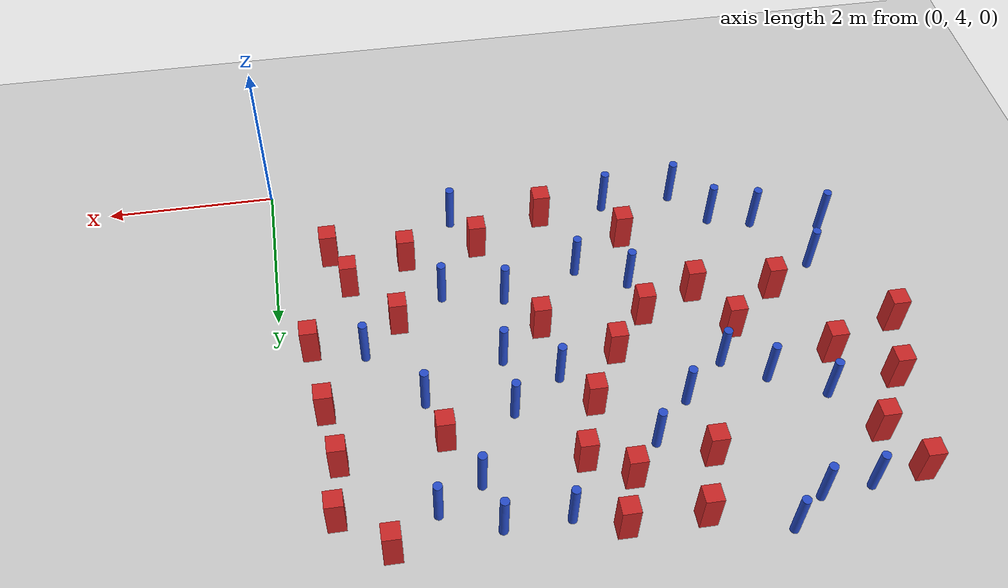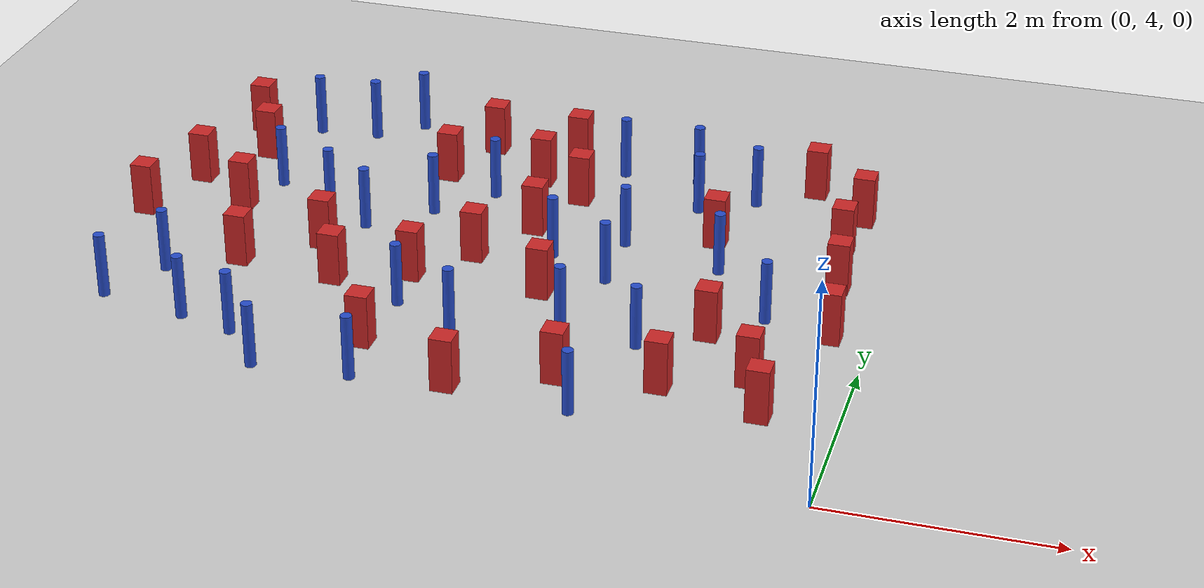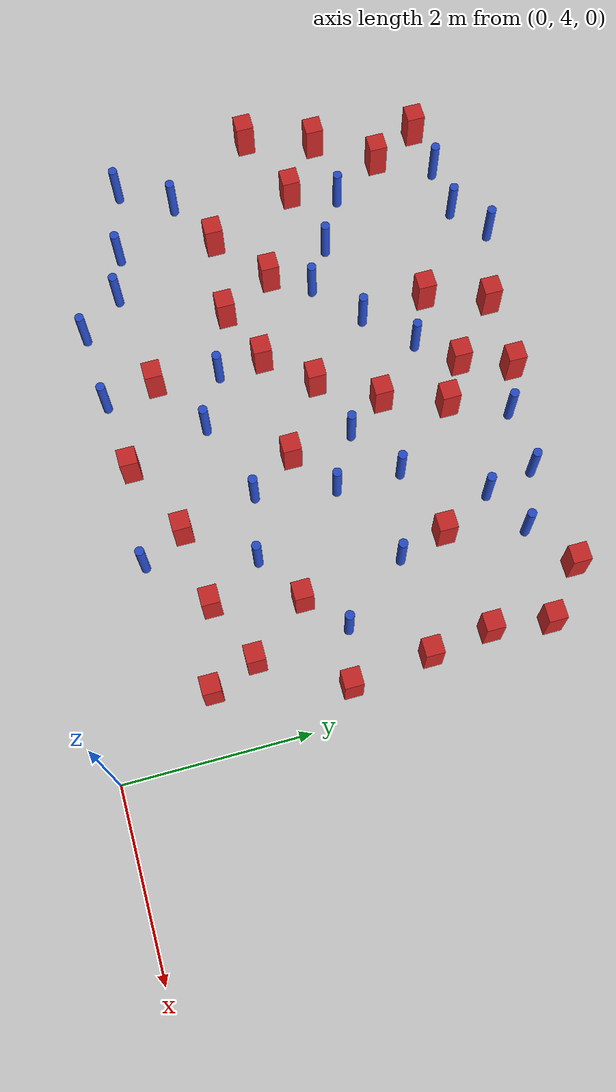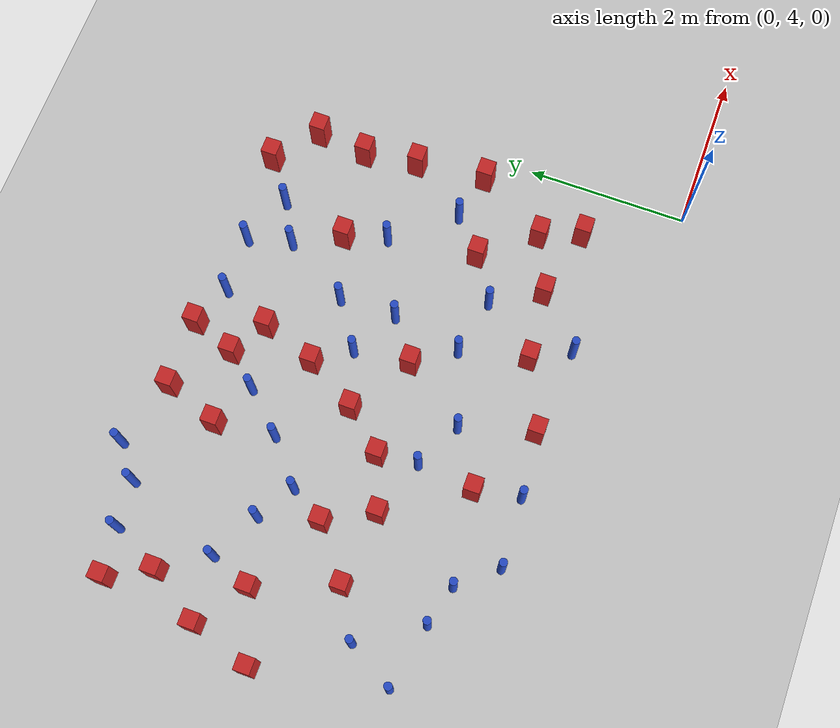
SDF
<sdf version="1.6">
 <world name="default">
  <model name="ground_plane">
   <static>1</static>
   <link name="link">
    <collision name="collision">
     <geometry><plane><normal>0 0 1</normal><size>100 100</size></plane></geometry>
     <surface><friction><ode><mu>100</mu><mu2>50</mu2></ode></friction></surface>
    </collision>
    <visual name="visual">
     <cast_shadows>0</cast_shadows>
     <geometry><plane><normal>0 0 1</normal><size>100 100</size></plane></geometry>
     <material>
      <ambient>1.0 1.0 1.0 1.0</ambient>
      <diffuse>0.8 0.8 0.8 1.0</diffuse>
      <specular>0.01 0.01 0.01 1.000000</specular>
     </material>
    </visual>
   </link>
  </model>
  <model name="square_post_obstacle2">
   <static>true</static>
   <pose>-1.68983508098 7.91056205244 1.91545236811e-07 -7.35059704564e-06 1.12565212e-07 2.39332434364e-05</pose>
   <link name="link">
    <pose>0 0 0.25 0 -0 0</pose>
    <inertial>
     <mass>100</mass>
     <inertia>
      <ixx>0.166667</ixx>
      <ixy>0</ixy>
      <ixz>0</ixz>
      <iyy>0.166667</iyy>
      <iyz>0</iyz>
      <izz>0.166667</izz>
     </inertia>
    </inertial>
    <collision name="collision"><geometry><box><size>.2 .2 .5</size></box></geometry></collision>
    <visual name="visual">
     <geometry><box><size>.2 .2 .5</size></box></geometry>
     <material>
      <script><name>Gazebo/Red</name><uri>file://media/materials/scripts/gazebo.material</uri></script>
     </material>
    </visual>
   </link>
  </model>
  <model name="square_post_obstacle4">
   <static>true</static>
   <pose>-6.96627765335 7.05669013784 1.91545236811e-07 -7.35059704564e-06 1.12565212e-07 2.39332434364e-05</pose>
   <link name="link">
    <pose>0 0 0.25 0 -0 0</pose>
    <inertial>
     <mass>100</mass>
     <inertia>
      <ixx>0.166667</ixx>
      <ixy>0</ixy>
      <ixz>0</ixz>
      <iyy>0.166667</iyy>
      <iyz>0</iyz>
      <izz>0.166667</izz>
     </inertia>
    </inertial>
    <collision name="collision"><geometry><box><size>.2 .2 .5</size></box></geometry></collision>
    <visual name="visual">
     <geometry><box><size>.2 .2 .5</size></box></geometry>
     <material>
      <script><name>Gazebo/Red</name><uri>file://media/materials/scripts/gazebo.material</uri></script>
     </material>
    </visual>
   </link>
  </model>
  <model name="square_post_obstacle5">
   <static>true</static>
   <pose>-3.10918925905 8.37854400875 1.91545236811e-07 -7.35059704564e-06 1.12565212e-07 2.39332434364e-05</pose>
   <link name="link">
    <pose>0 0 0.25 0 -0 0</pose>
    <inertial>
     <mass>100</mass>
     <inertia>
      <ixx>0.166667</ixx>
      <ixy>0</ixy>
      <ixz>0</ixz>
      <iyy>0.166667</iyy>
      <iyz>0</iyz>
      <izz>0.166667</izz>
     </inertia>
    </inertial>
    <collision name="collision"><geometry><box><size>.2 .2 .5</size></box></geometry></collision>
    <visual name="visual">
     <geometry><box><size>.2 .2 .5</size></box></geometry>
     <material>
      <script><name>Gazebo/Red</name><uri>file://media/materials/scripts/gazebo.material</uri></script>
     </material>
    </visual>
   </link>
  </model>
  <model name="pole_obstacle4">
   <static>true</static>
   <pose>-1.50320180323 8.76808181083 7.38925637345e-09 -8.47170692798e-08 1.24976764881e-08 -1.74513093027e-07</pose>
   <link name="link">
    <pose>0 0 0.3 0 -0 0</pose>
    <inertial>
     <mass>1</mass>
     <inertia><ixx>0.145833</ixx><ixy>0</ixy><ixz>0</ixz><iyy>0.145833</iyy><iyz>0</iyz><izz>0.125</izz></inertia>
    </inertial>
    <collision name="collision">
     <geometry><cylinder><radius>0.05</radius><length>.6</length></cylinder></geometry>
    </collision>
    <visual name="visual">
     <geometry><cylinder><radius>0.05</radius><length>.6</length></cylinder></geometry>
     <material>
      <script><name>Gazebo/Blue</name><uri>file://media/materials/scripts/gazebo.material</uri></script>
     </material>
    </visual>
   </link>
  </model>
  <model name="square_post_obstacle11">
   <static>true</static>
   <pose>-3.56252976413 8.64841808031 1.91545236811e-07 -7.35059704564e-06 1.12565212e-07 2.39332434364e-05</pose>
   <link name="link">
    <pose>0 0 0.25 0 -0 0</pose>
    <inertial>
     <mass>100</mass>
     <inertia>
      <ixx>0.166667</ixx>
      <ixy>0</ixy>
      <ixz>0</ixz>
      <iyy>0.166667</iyy>
      <iyz>0</iyz>
      <izz>0.166667</izz>
     </inertia>
    </inertial>
    <collision name="collision"><geometry><box><size>.2 .2 .5</size></box></geometry></collision>
    <visual name="visual">
     <geometry><box><size>.2 .2 .5</size></box></geometry>
     <material>
      <script><name>Gazebo/Red</name><uri>file://media/materials/scripts/gazebo.material</uri></script>
     </material>
    </visual>
   </link>
  </model>
  <model name="square_post_obstacle12">
   <static>true</static>
   <pose>-3.26608829545 4.85899182466 1.91545236811e-07 -7.35059704564e-06 1.12565212e-07 2.39332434364e-05</pose>
   <link name="link">
    <pose>0 0 0.25 0 -0 0</pose>
    <inertial>
     <mass>100</mass>
     <inertia>
      <ixx>0.166667</ixx>
      <ixy>0</ixy>
      <ixz>0</ixz>
      <iyy>0.166667</iyy>
      <iyz>0</iyz>
      <izz>0.166667</izz>
     </inertia>
    </inertial>
    <collision name="collision"><geometry><box><size>.2 .2 .5</size></box></geometry></collision>
    <visual name="visual">
     <geometry><box><size>.2 .2 .5</size></box></geometry>
     <material>
      <script><name>Gazebo/Red</name><uri>file://media/materials/scripts/gazebo.material</uri></script>
     </material>
    </visual>
   </link>
  </model>
  <model name="square_post_obstacle13">
   <static>true</static>
   <pose>-6.30400001628 8.47020350388 1.91545236811e-07 -7.35059704564e-06 1.12565212e-07 2.39332434364e-05</pose>
   <link name="link">
    <pose>0 0 0.25 0 -0 0</pose>
    <inertial>
     <mass>100</mass>
     <inertia>
      <ixx>0.166667</ixx>
      <ixy>0</ixy>
      <ixz>0</ixz>
      <iyy>0.166667</iyy>
      <iyz>0</iyz>
      <izz>0.166667</izz>
     </inertia>
    </inertial>
    <collision name="collision"><geometry><box><size>.2 .2 .5</size></box></geometry></collision>
    <visual name="visual">
     <geometry><box><size>.2 .2 .5</size></box></geometry>
     <material>
      <script><name>Gazebo/Red</name><uri>file://media/materials/scripts/gazebo.material</uri></script>
     </material>
    </visual>
   </link>
  </model>
  <model name="square_post_obstacle14">
   <static>true</static>
   <pose>-0.540769029304 8.05975475721 1.91545236811e-07 -7.35059704564e-06 1.12565212e-07 2.39332434364e-05</pose>
   <link name="link">
    <pose>0 0 0.25 0 -0 0</pose>
    <inertial>
     <mass>100</mass>
     <inertia>
      <ixx>0.166667</ixx>
      <ixy>0</ixy>
      <ixz>0</ixz>
      <iyy>0.166667</iyy>
      <iyz>0</iyz>
      <izz>0.166667</izz>
     </inertia>
    </inertial>
    <collision name="collision"><geometry><box><size>.2 .2 .5</size></box></geometry></collision>
    <visual name="visual">
     <geometry><box><size>.2 .2 .5</size></box></geometry>
     <material>
      <script><name>Gazebo/Red</name><uri>file://media/materials/scripts/gazebo.material</uri></script>
     </material>
    </visual>
   </link>
  </model>
  <model name="pole_obstacle10">
   <static>true</static>
   <pose>-6.65671681823 5.46702779641 7.38925637345e-09 -8.47170692796e-08 1.24976764786e-08 -1.74513093032e-07</pose>
   <link name="link">
    <pose>0 0 0.3 0 -0 0</pose>
    <inertial>
     <mass>1</mass>
     <inertia><ixx>0.145833</ixx><ixy>0</ixy><ixz>0</ixz><iyy>0.145833</iyy><iyz>0</iyz><izz>0.125</izz></inertia>
    </inertial>
    <collision name="collision">
     <geometry><cylinder><radius>0.05</radius><length>.6</length></cylinder></geometry>
    </collision>
    <visual name="visual">
     <geometry><cylinder><radius>0.05</radius><length>.6</length></cylinder></geometry>
     <material>
      <script><name>Gazebo/Blue</name><uri>file://media/materials/scripts/gazebo.material</uri></script>
     </material>
    </visual>
   </link>
  </model>
  <model name="square_post_obstacle21">
   <static>true</static>
   <pose>-4.16433848893 6.54994403118 1.91545236811e-07 -7.35059704564e-06 1.12565212e-07 2.39332434364e-05</pose>
   <link name="link">
    <pose>0 0 0.25 0 -0 0</pose>
    <inertial>
     <mass>100</mass>
     <inertia>
      <ixx>0.166667</ixx>
      <ixy>0</ixy>
      <ixz>0</ixz>
      <iyy>0.166667</iyy>
      <iyz>0</iyz>
      <izz>0.166667</izz>
     </inertia>
    </inertial>
    <collision name="collision"><geometry><box><size>.2 .2 .5</size></box></geometry></collision>
    <visual name="visual">
     <geometry><box><size>.2 .2 .5</size></box></geometry>
     <material>
      <script><name>Gazebo/Red</name><uri>file://media/materials/scripts/gazebo.material</uri></script>
     </material>
    </visual>
   </link>
  </model>
  <model name="pole_obstacle14">
   <static>true</static>
   <pose>-4.94699547819 4.71956309399 7.38925637345e-09 -8.47170692796e-08 1.24976764786e-08 -1.74513093032e-07</pose>
   <link name="link">
    <pose>0 0 0.3 0 -0 0</pose>
    <inertial>
     <mass>1</mass>
     <inertia><ixx>0.145833</ixx><ixy>0</ixy><ixz>0</ixz><iyy>0.145833</iyy><iyz>0</iyz><izz>0.125</izz></inertia>
    </inertial>
    <collision name="collision">
     <geometry><cylinder><radius>0.05</radius><length>.6</length></cylinder></geometry>
    </collision>
    <visual name="visual">
     <geometry><cylinder><radius>0.05</radius><length>.6</length></cylinder></geometry>
     <material>
      <script><name>Gazebo/Blue</name><uri>file://media/materials/scripts/gazebo.material</uri></script>
     </material>
    </visual>
   </link>
  </model>
  <model name="square_post_obstacle27">
   <static>true</static>
   <pose>-0.349142158028 6.51471214501 1.91545236811e-07 -7.35059704564e-06 1.12565212e-07 2.39332434364e-05</pose>
   <link name="link">
    <pose>0 0 0.25 0 -0 0</pose>
    <inertial>
     <mass>100</mass>
     <inertia>
      <ixx>0.166667</ixx>
      <ixy>0</ixy>
      <ixz>0</ixz>
      <iyy>0.166667</iyy>
      <iyz>0</iyz>
      <izz>0.166667</izz>
     </inertia>
    </inertial>
    <collision name="collision"><geometry><box><size>.2 .2 .5</size></box></geometry></collision>
    <visual name="visual">
     <geometry><box><size>.2 .2 .5</size></box></geometry>
     <material>
      <script><name>Gazebo/Red</name><uri>file://media/materials/scripts/gazebo.material</uri></script>
     </material>
    </visual>
   </link>
  </model>
  <model name="pole_obstacle20">
   <static>true</static>
   <pose>-5.94156260128 7.90531764118 7.38925637345e-09 -8.47170692796e-08 1.24976764786e-08 -1.74513093032e-07</pose>
   <link name="link">
    <pose>0 0 0.3 0 -0 0</pose>
    <inertial>
     <mass>1</mass>
     <inertia><ixx>0.145833</ixx><ixy>0</ixy><ixz>0</ixz><iyy>0.145833</iyy><iyz>0</iyz><izz>0.125</izz></inertia>
    </inertial>
    <collision name="collision">
     <geometry><cylinder><radius>0.05</radius><length>.6</length></cylinder></geometry>
    </collision>
    <visual name="visual">
     <geometry><cylinder><radius>0.05</radius><length>.6</length></cylinder></geometry>
     <material>
      <script><name>Gazebo/Blue</name><uri>file://media/materials/scripts/gazebo.material</uri></script>
     </material>
    </visual>
   </link>
  </model>
  <model name="pole_obstacle36">
   <static>true</static>
   <pose>-2.48091820682 7.66046415937 7.38925637345e-09 -8.47170692798e-08 1.24976765033e-08 -1.74513093019e-07</pose>
   <link name="link">
    <pose>0 0 0.3 0 -0 0</pose>
    <inertial>
     <mass>1</mass>
     <inertia><ixx>0.145833</ixx><ixy>0</ixy><ixz>0</ixz><iyy>0.145833</iyy><iyz>0</iyz><izz>0.125</izz></inertia>
    </inertial>
    <collision name="collision">
     <geometry><cylinder><radius>0.05</radius><length>.6</length></cylinder></geometry>
    </collision>
    <visual name="visual">
     <geometry><cylinder><radius>0.05</radius><length>.6</length></cylinder></geometry>
     <material>
      <script><name>Gazebo/Blue</name><uri>file://media/materials/scripts/gazebo.material</uri></script>
     </material>
    </visual>
   </link>
  </model>
  <model name="square_post_obstacle37">
   <static>true</static>
   <pose>-4.81358570334 6.29603112338 1.91545236811e-07 -7.35059704564e-06 1.12565212e-07 2.39332434364e-05</pose>
   <link name="link">
    <pose>0 0 0.25 0 -0 0</pose>
    <inertial>
     <mass>100</mass>
     <inertia>
      <ixx>0.166667</ixx>
      <ixy>0</ixy>
      <ixz>0</ixz>
      <iyy>0.166667</iyy>
      <iyz>0</iyz>
      <izz>0.166667</izz>
     </inertia>
    </inertial>
    <collision name="collision"><geometry><box><size>.2 .2 .5</size></box></geometry></collision>
    <visual name="visual">
     <geometry><box><size>.2 .2 .5</size></box></geometry>
     <material>
      <script><name>Gazebo/Red</name><uri>file://media/materials/scripts/gazebo.material</uri></script>
     </material>
    </visual>
   </link>
  </model>
  <model name="square_post_obstacle50">
   <static>true</static>
   <pose>-1.36747664874 6.27044725274 1.91545236811e-07 -7.35059704564e-06 1.12565212e-07 2.39332434364e-05</pose>
   <link name="link">
    <pose>0 0 0.25 0 -0 0</pose>
    <inertial>
     <mass>100</mass>
     <inertia>
      <ixx>0.166667</ixx>
      <ixy>0</ixy>
      <ixz>0</ixz>
      <iyy>0.166667</iyy>
      <iyz>0</iyz>
      <izz>0.166667</izz>
     </inertia>
    </inertial>
    <collision name="collision"><geometry><box><size>.2 .2 .5</size></box></geometry></collision>
    <visual name="visual">
     <geometry><box><size>.2 .2 .5</size></box></geometry>
     <material>
      <script><name>Gazebo/Red</name><uri>file://media/materials/scripts/gazebo.material</uri></script>
     </material>
    </visual>
   </link>
  </model>
  <model name="square_post_obstacle51">
   <static>true</static>
   <pose>-5.74496872689 6.38929400192 1.91545236811e-07 -7.35059704564e-06 1.12565212e-07 2.39332434364e-05</pose>
   <link name="link">
    <pose>0 0 0.25 0 -0 0</pose>
    <inertial>
     <mass>100</mass>
     <inertia>
      <ixx>0.166667</ixx>
      <ixy>0</ixy>
      <ixz>0</ixz>
      <iyy>0.166667</iyy>
      <iyz>0</iyz>
      <izz>0.166667</izz>
     </inertia>
    </inertial>
    <collision name="collision"><geometry><box><size>.2 .2 .5</size></box></geometry></collision>
    <visual name="visual">
     <geometry><box><size>.2 .2 .5</size></box></geometry>
     <material>
      <script><name>Gazebo/Red</name><uri>file://media/materials/scripts/gazebo.material</uri></script>
     </material>
    </visual>
   </link>
  </model>
  <model name="square_post_obstacle52">
   <static>true</static>
   <pose>-1.55913950059 5.33385394794 1.91545236811e-07 -7.35059704564e-06 1.12565212e-07 2.39332434364e-05</pose>
   <link name="link">
    <pose>0 0 0.25 0 -0 0</pose>
    <inertial>
     <mass>100</mass>
     <inertia>
      <ixx>0.166667</ixx>
      <ixy>0</ixy>
      <ixz>0</ixz>
      <iyy>0.166667</iyy>
      <iyz>0</iyz>
      <izz>0.166667</izz>
     </inertia>
    </inertial>
    <collision name="collision"><geometry><box><size>.2 .2 .5</size></box></geometry></collision>
    <visual name="visual">
     <geometry><box><size>.2 .2 .5</size></box></geometry>
     <material>
      <script><name>Gazebo/Red</name><uri>file://media/materials/scripts/gazebo.material</uri></script>
     </material>
    </visual>
   </link>
  </model>
  <model name="pole_obstacle52">
   <static>true</static>
   <pose>-2.62963407962 6.07228099859 7.38925637345e-09 -8.47170692798e-08 1.24976765033e-08 -1.74513093019e-07</pose>
   <link name="link">
    <pose>0 0 0.3 0 -0 0</pose>
    <inertial>
     <mass>1</mass>
     <inertia><ixx>0.145833</ixx><ixy>0</ixy><ixz>0</ixz><iyy>0.145833</iyy><iyz>0</iyz><izz>0.125</izz></inertia>
    </inertial>
    <collision name="collision">
     <geometry><cylinder><radius>0.05</radius><length>.6</length></cylinder></geometry>
    </collision>
    <visual name="visual">
     <geometry><cylinder><radius>0.05</radius><length>.6</length></cylinder></geometry>
     <material>
      <script><name>Gazebo/Blue</name><uri>file://media/materials/scripts/gazebo.material</uri></script>
     </material>
    </visual>
   </link>
  </model>
  <model name="square_post_obstacle59">
   <static>true</static>
   <pose>-0.85756154865 5.63280806306 1.91545236811e-07 -7.35059704564e-06 1.12565212e-07 2.39332434364e-05</pose>
   <link name="link">
    <pose>0 0 0.25 0 -0 0</pose>
    <inertial>
     <mass>100</mass>
     <inertia>
      <ixx>0.166667</ixx>
      <ixy>0</ixy>
      <ixz>0</ixz>
      <iyy>0.166667</iyy>
      <iyz>0</iyz>
      <izz>0.166667</izz>
     </inertia>
    </inertial>
    <collision name="collision"><geometry><box><size>.2 .2 .5</size></box></geometry></collision>
    <visual name="visual">
     <geometry><box><size>.2 .2 .5</size></box></geometry>
     <material>
      <script><name>Gazebo/Red</name><uri>file://media/materials/scripts/gazebo.material</uri></script>
     </material>
    </visual>
   </link>
  </model>
  <model name="pole_obstacle56">
   <static>true</static>
   <pose>-2.17038509917 4.7609936906 7.38925637345e-09 -8.47170692798e-08 1.24976765033e-08 -1.74513093019e-07</pose>
   <link name="link">
    <pose>0 0 0.3 0 -0 0</pose>
    <inertial>
     <mass>1</mass>
     <inertia><ixx>0.145833</ixx><ixy>0</ixy><ixz>0</ixz><iyy>0.145833</iyy><iyz>0</iyz><izz>0.125</izz></inertia>
    </inertial>
    <collision name="collision">
     <geometry><cylinder><radius>0.05</radius><length>.6</length></cylinder></geometry>
    </collision>
    <visual name="visual">
     <geometry><cylinder><radius>0.05</radius><length>.6</length></cylinder></geometry>
     <material>
      <script><name>Gazebo/Blue</name><uri>file://media/materials/scripts/gazebo.material</uri></script>
     </material>
    </visual>
   </link>
  </model>
  <model name="pole_obstacle68">
   <static>true</static>
   <pose>-5.84352967968 5.30600300978 7.38925637345e-09 -8.47170692796e-08 1.24976764786e-08 -1.74513093032e-07</pose>
   <link name="link">
    <pose>0 0 0.3 0 -0 0</pose>
    <inertial>
     <mass>1</mass>
     <inertia><ixx>0.145833</ixx><ixy>0</ixy><ixz>0</ixz><iyy>0.145833</iyy><iyz>0</iyz><izz>0.125</izz></inertia>
    </inertial>
    <collision name="collision">
     <geometry><cylinder><radius>0.05</radius><length>.6</length></cylinder></geometry>
    </collision>
    <visual name="visual">
     <geometry><cylinder><radius>0.05</radius><length>.6</length></cylinder></geometry>
     <material>
      <script><name>Gazebo/Blue</name><uri>file://media/materials/scripts/gazebo.material</uri></script>
     </material>
    </visual>
   </link>
  </model>
  <model name="pole_obstacle74">
   <static>true</static>
   <pose>-5.33494119269 5.17569432255 7.38925637345e-09 -8.47170692796e-08 1.24976764786e-08 -1.74513093032e-07</pose>
   <link name="link">
    <pose>0 0 0.3 0 -0 0</pose>
    <inertial>
     <mass>1</mass>
     <inertia><ixx>0.145833</ixx><ixy>0</ixy><ixz>0</ixz><iyy>0.145833</iyy><iyz>0</iyz><izz>0.125</izz></inertia>
    </inertial>
    <collision name="collision">
     <geometry><cylinder><radius>0.05</radius><length>.6</length></cylinder></geometry>
    </collision>
    <visual name="visual">
     <geometry><cylinder><radius>0.05</radius><length>.6</length></cylinder></geometry>
     <material>
      <script><name>Gazebo/Blue</name><uri>file://media/materials/scripts/gazebo.material</uri></script>
     </material>
    </visual>
   </link>
  </model>
  <model name="pole_obstacle75">
   <static>true</static>
   <pose>-1.9137976221 5.9294441796 7.38925637345e-09 -8.47170692799e-08 1.24976765033e-08 -1.74513093018e-07</pose>
   <link name="link">
    <pose>0 0 0.3 0 -0 0</pose>
    <inertial>
     <mass>1</mass>
     <inertia><ixx>0.145833</ixx><ixy>0</ixy><ixz>0</ixz><iyy>0.145833</iyy><iyz>0</iyz><izz>0.125</izz></inertia>
    </inertial>
    <collision name="collision">
     <geometry><cylinder><radius>0.05</radius><length>.6</length></cylinder></geometry>
    </collision>
    <visual name="visual">
     <geometry><cylinder><radius>0.05</radius><length>.6</length></cylinder></geometry>
     <material>
      <script><name>Gazebo/Blue</name><uri>file://media/materials/scripts/gazebo.material</uri></script>
     </material>
    </visual>
   </link>
  </model>
  <model name="pole_obstacle82">
   <static>true</static>
   <pose>-6.00608552077 9.08218943186 7.38925637345e-09 -8.471706928e-08 1.24976765081e-08 -1.74513093015e-07</pose>
   <link name="link">
    <pose>0 0 0.3 0 -0 0</pose>
    <inertial>
     <mass>1</mass>
     <inertia><ixx>0.145833</ixx><ixy>0</ixy><ixz>0</ixz><iyy>0.145833</iyy><iyz>0</iyz><izz>0.125</izz></inertia>
    </inertial>
    <collision name="collision">
     <geometry><cylinder><radius>0.05</radius><length>.6</length></cylinder></geometry>
    </collision>
    <visual name="visual">
     <geometry><cylinder><radius>0.05</radius><length>.6</length></cylinder></geometry>
     <material>
      <script><name>Gazebo/Blue</name><uri>file://media/materials/scripts/gazebo.material</uri></script>
     </material>
    </visual>
   </link>
  </model>
  <model name="pole_obstacle91">
   <static>true</static>
   <pose>-0.949520387627 6.65641467036 7.38925637345e-09 -8.471706928e-08 1.24976765086e-08 -1.74513093015e-07</pose>
   <link name="link">
    <pose>0 0 0.3 0 -0 0</pose>
    <inertial>
     <mass>1</mass>
     <inertia><ixx>0.145833</ixx><ixy>0</ixy><ixz>0</ixz><iyy>0.145833</iyy><iyz>0</iyz><izz>0.125</izz></inertia>
    </inertial>
    <collision name="collision">
     <geometry><cylinder><radius>0.05</radius><length>.6</length></cylinder></geometry>
    </collision>
    <visual name="visual">
     <geometry><cylinder><radius>0.05</radius><length>.6</length></cylinder></geometry>
     <material>
      <script><name>Gazebo/Blue</name><uri>file://media/materials/scripts/gazebo.material</uri></script>
     </material>
    </visual>
   </link>
  </model>
  <model name="pole_obstacle101">
   <static>true</static>
   <pose>-2.84685538733 9.01174721908 7.38925637345e-09 -8.47170692793e-08 1.24976764408e-08 -1.74513093041e-07</pose>
   <link name="link">
    <pose>0 0 0.3 0 -0 0</pose>
    <inertial>
     <mass>1</mass>
     <inertia><ixx>0.145833</ixx><ixy>0</ixy><ixz>0</ixz><iyy>0.145833</iyy><iyz>0</iyz><izz>0.125</izz></inertia>
    </inertial>
    <collision name="collision">
     <geometry><cylinder><radius>0.05</radius><length>.6</length></cylinder></geometry>
    </collision>
    <visual name="visual">
     <geometry><cylinder><radius>0.05</radius><length>.6</length></cylinder></geometry>
     <material>
      <script><name>Gazebo/Blue</name><uri>file://media/materials/scripts/gazebo.material</uri></script>
     </material>
    </visual>
   </link>
  </model>
  <model name="square_post_obstacle99">
   <static>true</static>
   <pose>-4.183867648 5.33742747474 1.91545236811e-07 -7.35059704564e-06 1.12565212e-07 2.39332434364e-05</pose>
   <link name="link">
    <pose>0 0 0.25 0 -0 0</pose>
    <inertial>
     <mass>100</mass>
     <inertia>
      <ixx>0.166667</ixx>
      <ixy>0</ixy>
      <ixz>0</ixz>
      <iyy>0.166667</iyy>
      <iyz>0</iyz>
      <izz>0.166667</izz>
     </inertia>
    </inertial>
    <collision name="collision"><geometry><box><size>.2 .2 .5</size></box></geometry></collision>
    <visual name="visual">
     <geometry><box><size>.2 .2 .5</size></box></geometry>
     <material>
      <script><name>Gazebo/Red</name><uri>file://media/materials/scripts/gazebo.material</uri></script>
     </material>
    </visual>
   </link>
  </model>
  <model name="pole_obstacle114">
   <static>true</static>
   <pose>-1.996168984 8.48869914123 7.38925637345e-09 -8.47170692797e-08 1.24976764886e-08 -1.74513093027e-07</pose>
   <link name="link">
    <pose>0 0 0.3 0 -0 0</pose>
    <inertial>
     <mass>1</mass>
     <inertia><ixx>0.145833</ixx><ixy>0</ixy><ixz>0</ixz><iyy>0.145833</iyy><iyz>0</iyz><izz>0.125</izz></inertia>
    </inertial>
    <collision name="collision">
     <geometry><cylinder><radius>0.05</radius><length>.6</length></cylinder></geometry>
    </collision>
    <visual name="visual">
     <geometry><cylinder><radius>0.05</radius><length>.6</length></cylinder></geometry>
     <material>
      <script><name>Gazebo/Blue</name><uri>file://media/materials/scripts/gazebo.material</uri></script>
     </material>
    </visual>
   </link>
  </model>
  <model name="pole_obstacle122">
   <static>true</static>
   <pose>-5.05020962846 9.45276595082 7.38925637345e-09 -8.471706928e-08 1.24976765081e-08 -1.74513093015e-07</pose>
   <link name="link">
    <pose>0 0 0.3 0 -0 0</pose>
    <inertial>
     <mass>1</mass>
     <inertia><ixx>0.145833</ixx><ixy>0</ixy><ixz>0</ixz><iyy>0.145833</iyy><iyz>0</iyz><izz>0.125</izz></inertia>
    </inertial>
    <collision name="collision">
     <geometry><cylinder><radius>0.05</radius><length>.6</length></cylinder></geometry>
    </collision>
    <visual name="visual">
     <geometry><cylinder><radius>0.05</radius><length>.6</length></cylinder></geometry>
     <material>
      <script><name>Gazebo/Blue</name><uri>file://media/materials/scripts/gazebo.material</uri></script>
     </material>
    </visual>
   </link>
  </model>
  <model name="pole_obstacle139">
   <static>true</static>
   <pose>-4.88551228791 7.32003251451 7.38925637345e-09 -8.47170692796e-08 1.24976764786e-08 -1.74513093032e-07</pose>
   <link name="link">
    <pose>0 0 0.3 0 -0 0</pose>
    <inertial>
     <mass>1</mass>
     <inertia><ixx>0.145833</ixx><ixy>0</ixy><ixz>0</ixz><iyy>0.145833</iyy><iyz>0</iyz><izz>0.125</izz></inertia>
    </inertial>
    <collision name="collision">
     <geometry><cylinder><radius>0.05</radius><length>.6</length></cylinder></geometry>
    </collision>
    <visual name="visual">
     <geometry><cylinder><radius>0.05</radius><length>.6</length></cylinder></geometry>
     <material>
      <script><name>Gazebo/Blue</name><uri>file://media/materials/scripts/gazebo.material</uri></script>
     </material>
    </visual>
   </link>
  </model>
  <model name="pole_obstacle141">
   <static>true</static>
   <pose>-6.32564228048 6.04860790422 7.38925637345e-09 -8.47170692796e-08 1.24976764786e-08 -1.74513093032e-07</pose>
   <link name="link">
    <pose>0 0 0.3 0 -0 0</pose>
    <inertial>
     <mass>1</mass>
     <inertia><ixx>0.145833</ixx><ixy>0</ixy><ixz>0</ixz><iyy>0.145833</iyy><iyz>0</iyz><izz>0.125</izz></inertia>
    </inertial>
    <collision name="collision">
     <geometry><cylinder><radius>0.05</radius><length>.6</length></cylinder></geometry>
    </collision>
    <visual name="visual">
     <geometry><cylinder><radius>0.05</radius><length>.6</length></cylinder></geometry>
     <material>
      <script><name>Gazebo/Blue</name><uri>file://media/materials/scripts/gazebo.material</uri></script>
     </material>
    </visual>
   </link>
  </model>
  <model name="pole_obstacle142">
   <static>true</static>
   <pose>-3.91580430136 8.24899008147 7.38925637345e-09 -8.47170692799e-08 1.24976765012e-08 -1.74513093021e-07</pose>
   <link name="link">
    <pose>0 0 0.3 0 -0 0</pose>
    <inertial>
     <mass>1</mass>
     <inertia><ixx>0.145833</ixx><ixy>0</ixy><ixz>0</ixz><iyy>0.145833</iyy><iyz>0</iyz><izz>0.125</izz></inertia>
    </inertial>
    <collision name="collision">
     <geometry><cylinder><radius>0.05</radius><length>.6</length></cylinder></geometry>
    </collision>
    <visual name="visual">
     <geometry><cylinder><radius>0.05</radius><length>.6</length></cylinder></geometry>
     <material>
      <script><name>Gazebo/Blue</name><uri>file://media/materials/scripts/gazebo.material</uri></script>
     </material>
    </visual>
   </link>
  </model>
  <model name="square_post_obstacle136">
   <static>true</static>
   <pose>-5.13226490431 6.88324326153 1.91545236811e-07 -7.35059704564e-06 1.12565212e-07 2.39332434364e-05</pose>
   <link name="link">
    <pose>0 0 0.25 0 -0 0</pose>
    <inertial>
     <mass>100</mass>
     <inertia>
      <ixx>0.166667</ixx>
      <ixy>0</ixy>
      <ixz>0</ixz>
      <iyy>0.166667</iyy>
      <iyz>0</iyz>
      <izz>0.166667</izz>
     </inertia>
    </inertial>
    <collision name="collision"><geometry><box><size>.2 .2 .5</size></box></geometry></collision>
    <visual name="visual">
     <geometry><box><size>.2 .2 .5</size></box></geometry>
     <material>
      <script><name>Gazebo/Red</name><uri>file://media/materials/scripts/gazebo.material</uri></script>
     </material>
    </visual>
   </link>
  </model>
  <model name="square_post_obstacle141">
   <static>true</static>
   <pose>-3.35508686795 9.20153337402 1.91545236811e-07 -7.35059704564e-06 1.12565212e-07 2.39332434364e-05</pose>
   <link name="link">
    <pose>0 0 0.25 0 -0 0</pose>
    <inertial>
     <mass>100</mass>
     <inertia>
      <ixx>0.166667</ixx>
      <ixy>0</ixy>
      <ixz>0</ixz>
      <iyy>0.166667</iyy>
      <iyz>0</iyz>
      <izz>0.166667</izz>
     </inertia>
    </inertial>
    <collision name="collision"><geometry><box><size>.2 .2 .5</size></box></geometry></collision>
    <visual name="visual">
     <geometry><box><size>.2 .2 .5</size></box></geometry>
     <material>
      <script><name>Gazebo/Red</name><uri>file://media/materials/scripts/gazebo.material</uri></script>
     </material>
    </visual>
   </link>
  </model>
  <model name="square_post_obstacle150">
   <static>true</static>
   <pose>-0.661174824403 5.12663690508 1.91545236811e-07 -7.35059704564e-06 1.12565212e-07 2.39332434364e-05</pose>
   <link name="link">
    <pose>0 0 0.25 0 -0 0</pose>
    <inertial>
     <mass>100</mass>
     <inertia>
      <ixx>0.166667</ixx>
      <ixy>0</ixy>
      <ixz>0</ixz>
      <iyy>0.166667</iyy>
      <iyz>0</iyz>
      <izz>0.166667</izz>
     </inertia>
    </inertial>
    <collision name="collision"><geometry><box><size>.2 .2 .5</size></box></geometry></collision>
    <visual name="visual">
     <geometry><box><size>.2 .2 .5</size></box></geometry>
     <material>
      <script><name>Gazebo/Red</name><uri>file://media/materials/scripts/gazebo.material</uri></script>
     </material>
    </visual>
   </link>
  </model>
  <model name="pole_obstacle163">
   <static>true</static>
   <pose>-1.53906821791 7.39080155385 7.38925637345e-09 -8.47170692799e-08 1.24976765033e-08 -1.74513093018e-07</pose>
   <link name="link">
    <pose>0 0 0.3 0 -0 0</pose>
    <inertial>
     <mass>1</mass>
     <inertia><ixx>0.145833</ixx><ixy>0</ixy><ixz>0</ixz><iyy>0.145833</iyy><iyz>0</iyz><izz>0.125</izz></inertia>
    </inertial>
    <collision name="collision">
     <geometry><cylinder><radius>0.05</radius><length>.6</length></cylinder></geometry>
    </collision>
    <visual name="visual">
     <geometry><cylinder><radius>0.05</radius><length>.6</length></cylinder></geometry>
     <material>
      <script><name>Gazebo/Blue</name><uri>file://media/materials/scripts/gazebo.material</uri></script>
     </material>
    </visual>
   </link>
  </model>
  <model name="square_post_obstacle155">
   <static>true</static>
   <pose>-6.12623542521 7.3891846485 1.91545236811e-07 -7.35059704564e-06 1.12565212e-07 2.39332434364e-05</pose>
   <link name="link">
    <pose>0 0 0.25 0 -0 0</pose>
    <inertial>
     <mass>100</mass>
     <inertia>
      <ixx>0.166667</ixx>
      <ixy>0</ixy>
      <ixz>0</ixz>
      <iyy>0.166667</iyy>
      <iyz>0</iyz>
      <izz>0.166667</izz>
     </inertia>
    </inertial>
    <collision name="collision"><geometry><box><size>.2 .2 .5</size></box></geometry></collision>
    <visual name="visual">
     <geometry><box><size>.2 .2 .5</size></box></geometry>
     <material>
      <script><name>Gazebo/Red</name><uri>file://media/materials/scripts/gazebo.material</uri></script>
     </material>
    </visual>
   </link>
  </model>
  <model name="square_post_obstacle156">
   <static>true</static>
   <pose>-4.45319329407 8.5073569305 1.91545236811e-07 -7.35059704564e-06 1.12565212e-07 2.39332434364e-05</pose>
   <link name="link">
    <pose>0 0 0.25 0 -0 0</pose>
    <inertial>
     <mass>100</mass>
     <inertia>
      <ixx>0.166667</ixx>
      <ixy>0</ixy>
      <ixz>0</ixz>
      <iyy>0.166667</iyy>
      <iyz>0</iyz>
      <izz>0.166667</izz>
     </inertia>
    </inertial>
    <collision name="collision"><geometry><box><size>.2 .2 .5</size></box></geometry></collision>
    <visual name="visual">
     <geometry><box><size>.2 .2 .5</size></box></geometry>
     <material>
      <script><name>Gazebo/Red</name><uri>file://media/materials/scripts/gazebo.material</uri></script>
     </material>
    </visual>
   </link>
  </model>
  <model name="square_post_obstacle162">
   <static>true</static>
   <pose>-3.35262866413 7.6928734331 1.91545236811e-07 -7.35059704564e-06 1.12565212e-07 2.39332434364e-05</pose>
   <link name="link">
    <pose>0 0 0.25 0 -0 0</pose>
    <inertial>
     <mass>100</mass>
     <inertia>
      <ixx>0.166667</ixx>
      <ixy>0</ixy>
      <ixz>0</ixz>
      <iyy>0.166667</iyy>
      <iyz>0</iyz>
      <izz>0.166667</izz>
     </inertia>
    </inertial>
    <collision name="collision"><geometry><box><size>.2 .2 .5</size></box></geometry></collision>
    <visual name="visual">
     <geometry><box><size>.2 .2 .5</size></box></geometry>
     <material>
      <script><name>Gazebo/Red</name><uri>file://media/materials/scripts/gazebo.material</uri></script>
     </material>
    </visual>
   </link>
  </model>
  <model name="square_post_obstacle167">
   <static>true</static>
   <pose>-0.994344306976 9.13480341599 1.91545236811e-07 -7.35059704564e-06 1.12565212e-07 2.39332434364e-05</pose>
   <link name="link">
    <pose>0 0 0.25 0 -0 0</pose>
    <inertial>
     <mass>100</mass>
     <inertia>
      <ixx>0.166667</ixx>
      <ixy>0</ixy>
      <ixz>0</ixz>
      <iyy>0.166667</iyy>
      <iyz>0</iyz>
      <izz>0.166667</izz>
     </inertia>
    </inertial>
    <collision name="collision"><geometry><box><size>.2 .2 .5</size></box></geometry></collision>
    <visual name="visual">
     <geometry><box><size>.2 .2 .5</size></box></geometry>
     <material>
      <script><name>Gazebo/Red</name><uri>file://media/materials/scripts/gazebo.material</uri></script>
     </material>
    </visual>
   </link>
  </model>
  <model name="pole_obstacle181">
   <static>true</static>
   <pose>-3.53310686386 5.75911193276 7.38925637345e-09 -8.47170692794e-08 1.24976764468e-08 -1.7451309304e-07</pose>
   <link name="link">
    <pose>0 0 0.3 0 -0 0</pose>
    <inertial>
     <mass>1</mass>
     <inertia><ixx>0.145833</ixx><ixy>0</ixy><ixz>0</ixz><iyy>0.145833</iyy><iyz>0</iyz><izz>0.125</izz></inertia>
    </inertial>
    <collision name="collision">
     <geometry><cylinder><radius>0.05</radius><length>.6</length></cylinder></geometry>
    </collision>
    <visual name="visual">
     <geometry><cylinder><radius>0.05</radius><length>.6</length></cylinder></geometry>
     <material>
      <script><name>Gazebo/Blue</name><uri>file://media/materials/scripts/gazebo.material</uri></script>
     </material>
    </visual>
   </link>
  </model>
  <model name="square_post_obstacle176">
   <static>true</static>
   <pose>-0.449013890693 7.3905310552 1.91545236811e-07 -7.35059704564e-06 1.12565212e-07 2.39332434364e-05</pose>
   <link name="link">
    <pose>0 0 0.25 0 -0 0</pose>
    <inertial>
     <mass>100</mass>
     <inertia>
      <ixx>0.166667</ixx>
      <ixy>0</ixy>
      <ixz>0</ixz>
      <iyy>0.166667</iyy>
      <iyz>0</iyz>
      <izz>0.166667</izz>
     </inertia>
    </inertial>
    <collision name="collision"><geometry><box><size>.2 .2 .5</size></box></geometry></collision>
    <visual name="visual">
     <geometry><box><size>.2 .2 .5</size></box></geometry>
     <material>
      <script><name>Gazebo/Red</name><uri>file://media/materials/scripts/gazebo.material</uri></script>
     </material>
    </visual>
   </link>
  </model>
  <model name="pole_obstacle191">
   <static>true</static>
   <pose>-4.11441268237 6.04858302593 7.38925637345e-09 -8.47170692796e-08 1.24976764786e-08 -1.74513093032e-07</pose>
   <link name="link">
    <pose>0 0 0.3 0 -0 0</pose>
    <inertial>
     <mass>1</mass>
     <inertia><ixx>0.145833</ixx><ixy>0</ixy><ixz>0</ixz><iyy>0.145833</iyy><iyz>0</iyz><izz>0.125</izz></inertia>
    </inertial>
    <collision name="collision">
     <geometry><cylinder><radius>0.05</radius><length>.6</length></cylinder></geometry>
    </collision>
    <visual name="visual">
     <geometry><cylinder><radius>0.05</radius><length>.6</length></cylinder></geometry>
     <material>
      <script><name>Gazebo/Blue</name><uri>file://media/materials/scripts/gazebo.material</uri></script>
     </material>
    </visual>
   </link>
  </model>
  <model name="square_post_obstacle188">
   <static>true</static>
   <pose>-6.5793541087 9.00169166566 1.91545236811e-07 -7.35059704564e-06 1.12565212e-07 2.39332434364e-05</pose>
   <link name="link">
    <pose>0 0 0.25 0 -0 0</pose>
    <inertial>
     <mass>100</mass>
     <inertia>
      <ixx>0.166667</ixx>
      <ixy>0</ixy>
      <ixz>0</ixz>
      <iyy>0.166667</iyy>
      <iyz>0</iyz>
      <izz>0.166667</izz>
     </inertia>
    </inertial>
    <collision name="collision"><geometry><box><size>.2 .2 .5</size></box></geometry></collision>
    <visual name="visual">
     <geometry><box><size>.2 .2 .5</size></box></geometry>
     <material>
      <script><name>Gazebo/Red</name><uri>file://media/materials/scripts/gazebo.material</uri></script>
     </material>
    </visual>
   </link>
  </model>
  <model name="pole_obstacle196">
   <static>true</static>
   <pose>-4.3692867669 7.76776558464 7.38925637345e-09 -8.47170692796e-08 1.24976764786e-08 -1.74513093032e-07</pose>
   <link name="link">
    <pose>0 0 0.3 0 -0 0</pose>
    <inertial>
     <mass>1</mass>
     <inertia><ixx>0.145833</ixx><ixy>0</ixy><ixz>0</ixz><iyy>0.145833</iyy><iyz>0</iyz><izz>0.125</izz></inertia>
    </inertial>
    <collision name="collision">
     <geometry><cylinder><radius>0.05</radius><length>.6</length></cylinder></geometry>
    </collision>
    <visual name="visual">
     <geometry><cylinder><radius>0.05</radius><length>.6</length></cylinder></geometry>
     <material>
      <script><name>Gazebo/Blue</name><uri>file://media/materials/scripts/gazebo.material</uri></script>
     </material>
    </visual>
   </link>
  </model>
  <model name="square_post_obstacle192">
   <static>true</static>
   <pose>-2.42296161304 5.23465713857 1.91545236811e-07 -7.35059704564e-06 1.12565212e-07 2.39332434364e-05</pose>
   <link name="link">
    <pose>0 0 0.25 0 -0 0</pose>
    <inertial>
     <mass>100</mass>
     <inertia>
      <ixx>0.166667</ixx>
      <ixy>0</ixy>
      <ixz>0</ixz>
      <iyy>0.166667</iyy>
      <iyz>0</iyz>
      <izz>0.166667</izz>
     </inertia>
    </inertial>
    <collision name="collision"><geometry><box><size>.2 .2 .5</size></box></geometry></collision>
    <visual name="visual">
     <geometry><box><size>.2 .2 .5</size></box></geometry>
     <material>
      <script><name>Gazebo/Red</name><uri>file://media/materials/scripts/gazebo.material</uri></script>
     </material>
    </visual>
   </link>
  </model>
  <model name="square_post_obstacle196">
   <static>true</static>
   <pose>-2.96432846684 6.56725553569 1.91545236811e-07 -7.35059704564e-06 1.12565212e-07 2.39332434364e-05</pose>
   <link name="link">
    <pose>0 0 0.25 0 -0 0</pose>
    <inertial>
     <mass>100</mass>
     <inertia>
      <ixx>0.166667</ixx>
      <ixy>0</ixy>
      <ixz>0</ixz>
      <iyy>0.166667</iyy>
      <iyz>0</iyz>
      <izz>0.166667</izz>
     </inertia>
    </inertial>
    <collision name="collision"><geometry><box><size>.2 .2 .5</size></box></geometry></collision>
    <visual name="visual">
     <geometry><box><size>.2 .2 .5</size></box></geometry>
     <material>
      <script><name>Gazebo/Red</name><uri>file://media/materials/scripts/gazebo.material</uri></script>
     </material>
    </visual>
   </link>
  </model>
  <model name="pole_obstacle202">
   <static>true</static>
   <pose>-5.44006861105 9.13072997102 7.38925637345e-09 -8.471706928e-08 1.24976765081e-08 -1.74513093015e-07</pose>
   <link name="link">
    <pose>0 0 0.3 0 -0 0</pose>
    <inertial>
     <mass>1</mass>
     <inertia><ixx>0.145833</ixx><ixy>0</ixy><ixz>0</ixz><iyy>0.145833</iyy><iyz>0</iyz><izz>0.125</izz></inertia>
    </inertial>
    <collision name="collision">
     <geometry><cylinder><radius>0.05</radius><length>.6</length></cylinder></geometry>
    </collision>
    <visual name="visual">
     <geometry><cylinder><radius>0.05</radius><length>.6</length></cylinder></geometry>
     <material>
      <script><name>Gazebo/Blue</name><uri>file://media/materials/scripts/gazebo.material</uri></script>
     </material>
    </visual>
   </link>
  </model>
  <model name="pole_obstacle208">
   <static>true</static>
   <pose>-3.05586743123 7.26858479698 7.38925637345e-09 -8.47170692798e-08 1.24976765033e-08 -1.74513093019e-07</pose>
   <link name="link">
    <pose>0 0 0.3 0 -0 0</pose>
    <inertial>
     <mass>1</mass>
     <inertia><ixx>0.145833</ixx><ixy>0</ixy><ixz>0</ixz><iyy>0.145833</iyy><iyz>0</iyz><izz>0.125</izz></inertia>
    </inertial>
    <collision name="collision">
     <geometry><cylinder><radius>0.05</radius><length>.6</length></cylinder></geometry>
    </collision>
    <visual name="visual">
     <geometry><cylinder><radius>0.05</radius><length>.6</length></cylinder></geometry>
     <material>
      <script><name>Gazebo/Blue</name><uri>file://media/materials/scripts/gazebo.material</uri></script>
     </material>
    </visual>
   </link>
  </model>
  <model name="pole_obstacle209">
   <static>true</static>
   <pose>-4.08055715564 4.76691505034 7.38925637345e-09 -8.47170692796e-08 1.24976764786e-08 -1.74513093032e-07</pose>
   <link name="link">
    <pose>0 0 0.3 0 -0 0</pose>
    <inertial>
     <mass>1</mass>
     <inertia><ixx>0.145833</ixx><ixy>0</ixy><ixz>0</ixz><iyy>0.145833</iyy><iyz>0</iyz><izz>0.125</izz></inertia>
    </inertial>
    <collision name="collision">
     <geometry><cylinder><radius>0.05</radius><length>.6</length></cylinder></geometry>
    </collision>
    <visual name="visual">
     <geometry><cylinder><radius>0.05</radius><length>.6</length></cylinder></geometry>
     <material>
      <script><name>Gazebo/Blue</name><uri>file://media/materials/scripts/gazebo.material</uri></script>
     </material>
    </visual>
   </link>
  </model>
  <model name="pole_obstacle212">
   <static>true</static>
   <pose>-2.13108693805 9.03313420195 7.38925637345e-09 -8.47170692793e-08 1.24976764408e-08 -1.74513093041e-07</pose>
   <link name="link">
    <pose>0 0 0.3 0 -0 0</pose>
    <inertial>
     <mass>1</mass>
     <inertia><ixx>0.145833</ixx><ixy>0</ixy><ixz>0</ixz><iyy>0.145833</iyy><iyz>0</iyz><izz>0.125</izz></inertia>
    </inertial>
    <collision name="collision">
     <geometry><cylinder><radius>0.05</radius><length>.6</length></cylinder></geometry>
    </collision>
    <visual name="visual">
     <geometry><cylinder><radius>0.05</radius><length>.6</length></cylinder></geometry>
     <material>
      <script><name>Gazebo/Blue</name><uri>file://media/materials/scripts/gazebo.material</uri></script>
     </material>
    </visual>
   </link>
  </model>
  <model name="pole_obstacle218">
   <static>true</static>
   <pose>-2.47141381454 6.94551592517 7.38925637345e-09 -8.47170692798e-08 1.24976765033e-08 -1.74513093019e-07</pose>
   <link name="link">
    <pose>0 0 0.3 0 -0 0</pose>
    <inertial>
     <mass>1</mass>
     <inertia><ixx>0.145833</ixx><ixy>0</ixy><ixz>0</ixz><iyy>0.145833</iyy><iyz>0</iyz><izz>0.125</izz></inertia>
    </inertial>
    <collision name="collision">
     <geometry><cylinder><radius>0.05</radius><length>.6</length></cylinder></geometry>
    </collision>
    <visual name="visual">
     <geometry><cylinder><radius>0.05</radius><length>.6</length></cylinder></geometry>
     <material>
      <script><name>Gazebo/Blue</name><uri>file://media/materials/scripts/gazebo.material</uri></script>
     </material>
    </visual>
   </link>
  </model>
  <model name="square_post_obstacle208">
   <static>true</static>
   <pose>-0.467092260357 8.69819329555 1.91545236811e-07 -7.35059704564e-06 1.12565212e-07 2.39332434364e-05</pose>
   <link name="link">
    <pose>0 0 0.25 0 -0 0</pose>
    <inertial>
     <mass>100</mass>
     <inertia>
      <ixx>0.166667</ixx>
      <ixy>0</ixy>
      <ixz>0</ixz>
      <iyy>0.166667</iyy>
      <iyz>0</iyz>
      <izz>0.166667</izz>
     </inertia>
    </inertial>
    <collision name="collision"><geometry><box><size>.2 .2 .5</size></box></geometry></collision>
    <visual name="visual">
     <geometry><box><size>.2 .2 .5</size></box></geometry>
     <material>
      <script><name>Gazebo/Red</name><uri>file://media/materials/scripts/gazebo.material</uri></script>
     </material>
    </visual>
   </link>
  </model>
  <model name="square_post_obstacle211">
   <static>true</static>
   <pose>-4.19722358537 9.19255425264 1.91545236811e-07 -7.35059704564e-06 1.12565212e-07 2.39332434364e-05</pose>
   <link name="link">
    <pose>0 0 0.25 0 -0 0</pose>
    <inertial>
     <mass>100</mass>
     <inertia>
      <ixx>0.166667</ixx>
      <ixy>0</ixy>
      <ixz>0</ixz>
      <iyy>0.166667</iyy>
      <iyz>0</iyz>
      <izz>0.166667</izz>
     </inertia>
    </inertial>
    <collision name="collision"><geometry><box><size>.2 .2 .5</size></box></geometry></collision>
    <visual name="visual">
     <geometry><box><size>.2 .2 .5</size></box></geometry>
     <material>
      <script><name>Gazebo/Red</name><uri>file://media/materials/scripts/gazebo.material</uri></script>
     </material>
    </visual>
   </link>
  </model>
  <model name="square_post_obstacle215">
   <static>true</static>
   <pose>-6.7204000352 7.82308998808 1.91545236811e-07 -7.35059704564e-06 1.12565212e-07 2.39332434364e-05</pose>
   <link name="link">
    <pose>0 0 0.25 0 -0 0</pose>
    <inertial>
     <mass>100</mass>
     <inertia>
      <ixx>0.166667</ixx>
      <ixy>0</ixy>
      <ixz>0</ixz>
      <iyy>0.166667</iyy>
      <iyz>0</iyz>
      <izz>0.166667</izz>
     </inertia>
    </inertial>
    <collision name="collision"><geometry><box><size>.2 .2 .5</size></box></geometry></collision>
    <visual name="visual">
     <geometry><box><size>.2 .2 .5</size></box></geometry>
     <material>
      <script><name>Gazebo/Red</name><uri>file://media/materials/scripts/gazebo.material</uri></script>
     </material>
    </visual>
   </link>
  </model>
  <model name="square_post_obstacle216">
   <static>true</static>
   <pose>-3.7305000352 7.04730998808 1.91545236811e-07 -7.35059704564e-06 1.12565212e-07 2.39332434364e-05</pose>
   <link name="link">
    <pose>0 0 0.25 0 -0 0</pose>
    <inertial>
     <mass>100</mass>
     <inertia>
      <ixx>0.166667</ixx>
      <ixy>0</ixy>
      <ixz>0</ixz>
      <iyy>0.166667</iyy>
      <iyz>0</iyz>
      <izz>0.166667</izz>
     </inertia>
    </inertial>
    <collision name="collision"><geometry><box><size>.2 .2 .5</size></box></geometry></collision>
    <visual name="visual">
     <geometry><box><size>.2 .2 .5</size></box></geometry>
     <material>
      <script><name>Gazebo/Red</name><uri>file://media/materials/scripts/gazebo.material</uri></script>
     </material>
    </visual>
   </link>
  </model>
  <model name="pole_obstacle233">
   <static>true</static>
   <pose>-5.34419999043 7.60066002078 7.38925637345e-09 -8.47170692796e-08 1.24976764786e-08 -1.74513093032e-07</pose>
   <link name="link">
    <pose>0 0 0.3 0 -0 0</pose>
    <inertial>
     <mass>1</mass>
     <inertia><ixx>0.145833</ixx><ixy>0</ixy><ixz>0</ixz><iyy>0.145833</iyy><iyz>0</iyz><izz>0.125</izz></inertia>
    </inertial>
    <collision name="collision">
     <geometry><cylinder><radius>0.05</radius><length>.6</length></cylinder></geometry>
    </collision>
    <visual name="visual">
     <geometry><cylinder><radius>0.05</radius><length>.6</length></cylinder></geometry>
     <material>
      <script><name>Gazebo/Blue</name><uri>file://media/materials/scripts/gazebo.material</uri></script>
     </material>
    </visual>
   </link>
  </model>
 </world>
</sdf>
